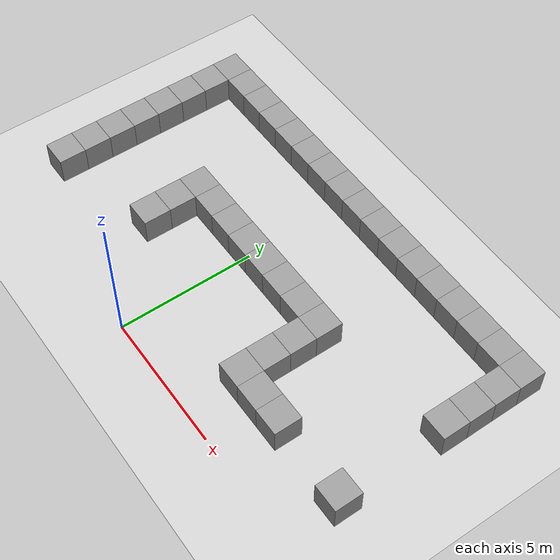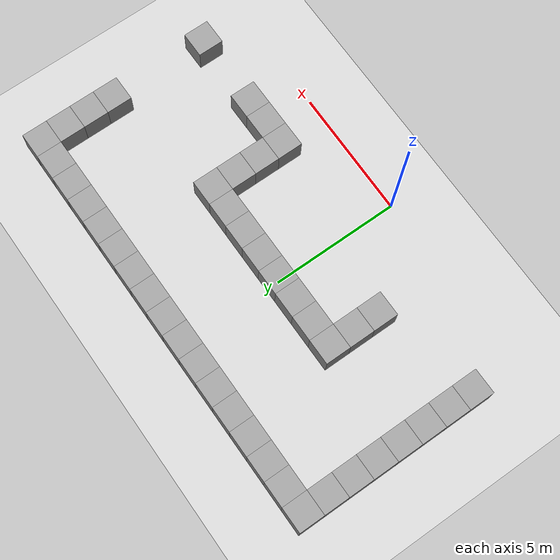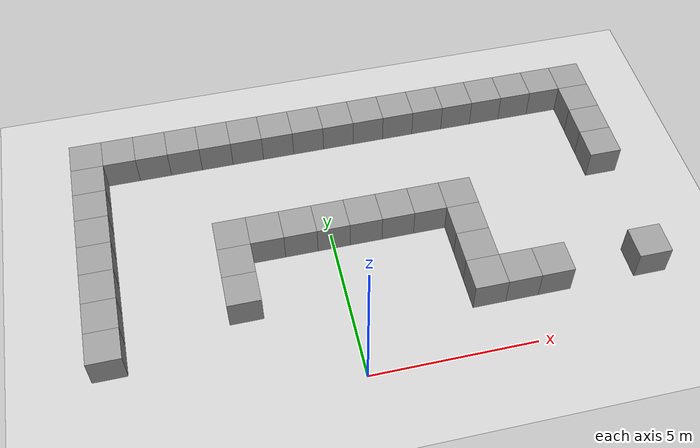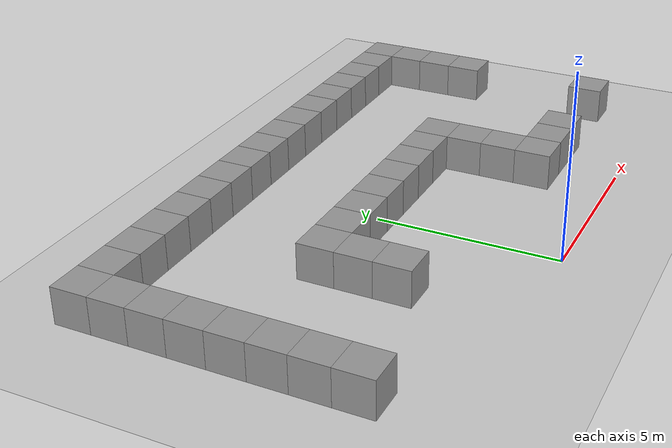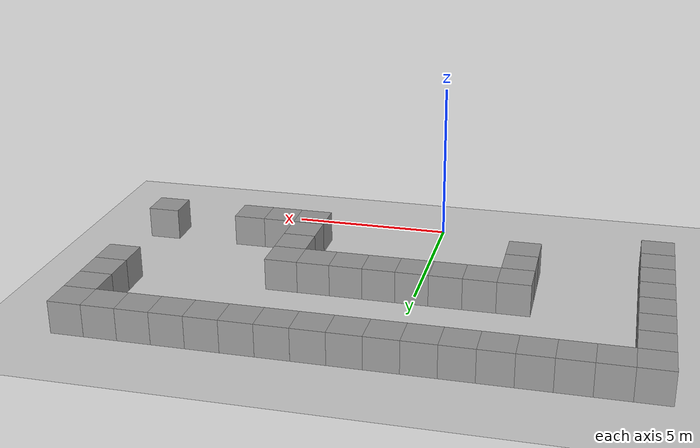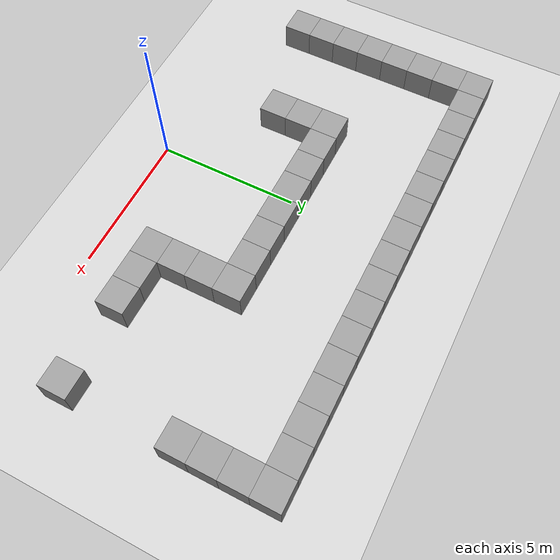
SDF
<sdf version="1.4">
 <world name="default">
  <model name="ground_plane">
   <static>1</static>
   <link name="link">
    <collision name="collision">
     <geometry><plane><normal>0 0 1</normal><size>100 100</size></plane></geometry>
     <surface><friction><ode><mu>100</mu><mu2>50</mu2></ode></friction></surface>
    </collision>
    <visual name="visual">
     <cast_shadows>0</cast_shadows>
     <geometry><plane><normal>0 0 1</normal><size>100 100</size></plane></geometry>
     <material>
      <script><uri>file://media/materials/scripts/gazebo.material</uri><name>Gazebo/Grey</name></script>
     </material>
    </visual>
    <velocity_decay><linear>0</linear><angular>0</angular></velocity_decay>
   </link>
  </model>
  <model name="unit_box_26">
   <pose>9 2.00001 0.5 -0 -0 -3e-06</pose>
   <link name="link">
    <inertial>
     <mass>1</mass>
     <inertia><ixx>1</ixx><ixy>0</ixy><ixz>0</ixz><iyy>1</iyy><iyz>0</iyz><izz>1</izz></inertia>
    </inertial>
    <collision name="collision"><geometry><box><size>1 1 1</size></box></geometry></collision>
    <visual name="visual">
     <geometry><box><size>1 1 1</size></box></geometry>
     <material>
      <script><uri>file://media/materials/scripts/gazebo.material</uri><name>Gazebo/Grey</name></script>
     </material>
    </visual>
    <velocity_decay><linear>0</linear><angular>0</angular></velocity_decay>
   </link>
   <static>0</static>
  </model>
  <model name="unit_box_30">
   <pose>9.00002 6.00002 0.5 0 0 -2e-06</pose>
   <link name="link">
    <inertial>
     <mass>1</mass>
     <inertia><ixx>1</ixx><ixy>0</ixy><ixz>0</ixz><iyy>1</iyy><iyz>0</iyz><izz>1</izz></inertia>
    </inertial>
    <collision name="collision"><geometry><box><size>1 1 1</size></box></geometry></collision>
    <visual name="visual">
     <geometry><box><size>1 1 1</size></box></geometry>
     <material>
      <script><uri>file://media/materials/scripts/gazebo.material</uri><name>Gazebo/Grey</name></script>
     </material>
    </visual>
    <velocity_decay><linear>0</linear><angular>0</angular></velocity_decay>
   </link>
   <static>0</static>
  </model>
  <model name="unit_box_31">
   <pose>9 7.00002 0.5 0 0 -2e-06</pose>
   <link name="link">
    <inertial>
     <mass>1</mass>
     <inertia><ixx>1</ixx><ixy>0</ixy><ixz>0</ixz><iyy>1</iyy><iyz>0</iyz><izz>1</izz></inertia>
    </inertial>
    <collision name="collision"><geometry><box><size>1 1 1</size></box></geometry></collision>
    <visual name="visual">
     <geometry><box><size>1 1 1</size></box></geometry>
     <material>
      <script><uri>file://media/materials/scripts/gazebo.material</uri><name>Gazebo/Grey</name></script>
     </material>
    </visual>
    <velocity_decay><linear>0</linear><angular>0</angular></velocity_decay>
   </link>
   <static>0</static>
  </model>
  <model name="unit_box_32">
   <pose>9.00003 8.00002 0.5 0 0 -1e-06</pose>
   <link name="link">
    <inertial>
     <mass>1</mass>
     <inertia><ixx>1</ixx><ixy>0</ixy><ixz>0</ixz><iyy>1</iyy><iyz>0</iyz><izz>1</izz></inertia>
    </inertial>
    <collision name="collision"><geometry><box><size>1 1 1</size></box></geometry></collision>
    <visual name="visual">
     <geometry><box><size>1 1 1</size></box></geometry>
     <material>
      <script><uri>file://media/materials/scripts/gazebo.material</uri><name>Gazebo/Grey</name></script>
     </material>
    </visual>
    <velocity_decay><linear>0</linear><angular>0</angular></velocity_decay>
   </link>
   <static>0</static>
  </model>
  <model name="unit_box_33">
   <pose>9.00002 9.00002 0.5 0 0 -3e-06</pose>
   <link name="link">
    <inertial>
     <mass>1</mass>
     <inertia><ixx>1</ixx><ixy>0</ixy><ixz>0</ixz><iyy>1</iyy><iyz>0</iyz><izz>1</izz></inertia>
    </inertial>
    <collision name="collision"><geometry><box><size>1 1 1</size></box></geometry></collision>
    <visual name="visual">
     <geometry><box><size>1 1 1</size></box></geometry>
     <material>
      <script><uri>file://media/materials/scripts/gazebo.material</uri><name>Gazebo/Grey</name></script>
     </material>
    </visual>
    <velocity_decay><linear>0</linear><angular>0</angular></velocity_decay>
   </link>
   <static>0</static>
  </model>
  <model name="unit_box_34">
   <pose>8.00002 8.99998 0.5 0 0 -4e-06</pose>
   <link name="link">
    <inertial>
     <mass>1</mass>
     <inertia><ixx>1</ixx><ixy>0</ixy><ixz>0</ixz><iyy>1</iyy><iyz>0</iyz><izz>1</izz></inertia>
    </inertial>
    <collision name="collision"><geometry><box><size>1 1 1</size></box></geometry></collision>
    <visual name="visual">
     <geometry><box><size>1 1 1</size></box></geometry>
     <material>
      <script><uri>file://media/materials/scripts/gazebo.material</uri><name>Gazebo/Grey</name></script>
     </material>
    </visual>
    <velocity_decay><linear>0</linear><angular>0</angular></velocity_decay>
   </link>
   <static>0</static>
  </model>
  <model name="unit_box_35">
   <pose>7.00001 9.00001 0.5 0 0 -1.1e-05</pose>
   <link name="link">
    <inertial>
     <mass>1</mass>
     <inertia><ixx>1</ixx><ixy>0</ixy><ixz>0</ixz><iyy>1</iyy><iyz>0</iyz><izz>1</izz></inertia>
    </inertial>
    <collision name="collision"><geometry><box><size>1 1 1</size></box></geometry></collision>
    <visual name="visual">
     <geometry><box><size>1 1 1</size></box></geometry>
     <material>
      <script><uri>file://media/materials/scripts/gazebo.material</uri><name>Gazebo/Grey</name></script>
     </material>
    </visual>
    <velocity_decay><linear>0</linear><angular>0</angular></velocity_decay>
   </link>
   <static>0</static>
  </model>
  <model name="unit_box_36">
   <pose>6.00001 9.00001 0.5 0 -0 -1e-05</pose>
   <link name="link">
    <inertial>
     <mass>1</mass>
     <inertia><ixx>1</ixx><ixy>0</ixy><ixz>0</ixz><iyy>1</iyy><iyz>0</iyz><izz>1</izz></inertia>
    </inertial>
    <collision name="collision"><geometry><box><size>1 1 1</size></box></geometry></collision>
    <visual name="visual">
     <geometry><box><size>1 1 1</size></box></geometry>
     <material>
      <script><uri>file://media/materials/scripts/gazebo.material</uri><name>Gazebo/Grey</name></script>
     </material>
    </visual>
    <velocity_decay><linear>0</linear><angular>0</angular></velocity_decay>
   </link>
   <static>0</static>
  </model>
  <model name="unit_box_37">
   <pose>5.00001 8.99999 0.5 0 0 -1e-05</pose>
   <link name="link">
    <inertial>
     <mass>1</mass>
     <inertia><ixx>1</ixx><ixy>0</ixy><ixz>0</ixz><iyy>1</iyy><iyz>0</iyz><izz>1</izz></inertia>
    </inertial>
    <collision name="collision"><geometry><box><size>1 1 1</size></box></geometry></collision>
    <visual name="visual">
     <geometry><box><size>1 1 1</size></box></geometry>
     <material>
      <script><uri>file://media/materials/scripts/gazebo.material</uri><name>Gazebo/Grey</name></script>
     </material>
    </visual>
    <velocity_decay><linear>0</linear><angular>0</angular></velocity_decay>
   </link>
   <static>0</static>
  </model>
  <model name="unit_box_38">
   <pose>4.00001 8.99999 0.5 0 0 -9e-06</pose>
   <link name="link">
    <inertial>
     <mass>1</mass>
     <inertia><ixx>1</ixx><ixy>0</ixy><ixz>0</ixz><iyy>1</iyy><iyz>0</iyz><izz>1</izz></inertia>
    </inertial>
    <collision name="collision"><geometry><box><size>1 1 1</size></box></geometry></collision>
    <visual name="visual">
     <geometry><box><size>1 1 1</size></box></geometry>
     <material>
      <script><uri>file://media/materials/scripts/gazebo.material</uri><name>Gazebo/Grey</name></script>
     </material>
    </visual>
    <velocity_decay><linear>0</linear><angular>0</angular></velocity_decay>
   </link>
   <static>0</static>
  </model>
  <model name="unit_box_39">
   <pose>3.00001 8.99998 0.5 -0 -0 -1e-05</pose>
   <link name="link">
    <inertial>
     <mass>1</mass>
     <inertia><ixx>1</ixx><ixy>0</ixy><ixz>0</ixz><iyy>1</iyy><iyz>0</iyz><izz>1</izz></inertia>
    </inertial>
    <collision name="collision"><geometry><box><size>1 1 1</size></box></geometry></collision>
    <visual name="visual">
     <geometry><box><size>1 1 1</size></box></geometry>
     <material>
      <script><uri>file://media/materials/scripts/gazebo.material</uri><name>Gazebo/Grey</name></script>
     </material>
    </visual>
    <velocity_decay><linear>0</linear><angular>0</angular></velocity_decay>
   </link>
   <static>0</static>
  </model>
  <model name="unit_box_40">
   <pose>2.00001 8.99996 0.5 0 0 -1e-05</pose>
   <link name="link">
    <inertial>
     <mass>1</mass>
     <inertia><ixx>1</ixx><ixy>0</ixy><ixz>0</ixz><iyy>1</iyy><iyz>0</iyz><izz>1</izz></inertia>
    </inertial>
    <collision name="collision"><geometry><box><size>1 1 1</size></box></geometry></collision>
    <visual name="visual">
     <geometry><box><size>1 1 1</size></box></geometry>
     <material>
      <script><uri>file://media/materials/scripts/gazebo.material</uri><name>Gazebo/Grey</name></script>
     </material>
    </visual>
    <velocity_decay><linear>0</linear><angular>0</angular></velocity_decay>
   </link>
   <static>0</static>
  </model>
  <model name="unit_box_41">
   <pose>1.00001 8.99996 0.5 0 -0 -9e-06</pose>
   <link name="link">
    <inertial>
     <mass>1</mass>
     <inertia><ixx>1</ixx><ixy>0</ixy><ixz>0</ixz><iyy>1</iyy><iyz>0</iyz><izz>1</izz></inertia>
    </inertial>
    <collision name="collision"><geometry><box><size>1 1 1</size></box></geometry></collision>
    <visual name="visual">
     <geometry><box><size>1 1 1</size></box></geometry>
     <material>
      <script><uri>file://media/materials/scripts/gazebo.material</uri><name>Gazebo/Grey</name></script>
     </material>
    </visual>
    <velocity_decay><linear>0</linear><angular>0</angular></velocity_decay>
   </link>
   <static>0</static>
  </model>
  <model name="unit_box_42">
   <pose>4e-06 8.99999 0.5 -0 -0 -8e-06</pose>
   <link name="link">
    <inertial>
     <mass>1</mass>
     <inertia><ixx>1</ixx><ixy>0</ixy><ixz>0</ixz><iyy>1</iyy><iyz>0</iyz><izz>1</izz></inertia>
    </inertial>
    <collision name="collision"><geometry><box><size>1 1 1</size></box></geometry></collision>
    <visual name="visual">
     <geometry><box><size>1 1 1</size></box></geometry>
     <material>
      <script><uri>file://media/materials/scripts/gazebo.material</uri><name>Gazebo/Grey</name></script>
     </material>
    </visual>
    <velocity_decay><linear>0</linear><angular>0</angular></velocity_decay>
   </link>
   <static>0</static>
  </model>
  <model name="unit_box_43">
   <pose>-0.999997 8.99998 0.5 -0 -0 -7e-06</pose>
   <link name="link">
    <inertial>
     <mass>1</mass>
     <inertia><ixx>1</ixx><ixy>0</ixy><ixz>0</ixz><iyy>1</iyy><iyz>0</iyz><izz>1</izz></inertia>
    </inertial>
    <collision name="collision"><geometry><box><size>1 1 1</size></box></geometry></collision>
    <visual name="visual">
     <geometry><box><size>1 1 1</size></box></geometry>
     <material>
      <script><uri>file://media/materials/scripts/gazebo.material</uri><name>Gazebo/Grey</name></script>
     </material>
    </visual>
    <velocity_decay><linear>0</linear><angular>0</angular></velocity_decay>
   </link>
   <static>0</static>
  </model>
  <model name="unit_box_44">
   <pose>-2 9 0.5 0 0 -8e-06</pose>
   <link name="link">
    <inertial>
     <mass>1</mass>
     <inertia><ixx>1</ixx><ixy>0</ixy><ixz>0</ixz><iyy>1</iyy><iyz>0</iyz><izz>1</izz></inertia>
    </inertial>
    <collision name="collision"><geometry><box><size>1 1 1</size></box></geometry></collision>
    <visual name="visual">
     <geometry><box><size>1 1 1</size></box></geometry>
     <material>
      <script><uri>file://media/materials/scripts/gazebo.material</uri><name>Gazebo/Grey</name></script>
     </material>
    </visual>
    <velocity_decay><linear>0</linear><angular>0</angular></velocity_decay>
   </link>
   <static>0</static>
  </model>
  <model name="unit_box_45">
   <pose>-3 9.00001 0.5 -0 -0 -7e-06</pose>
   <link name="link">
    <inertial>
     <mass>1</mass>
     <inertia><ixx>1</ixx><ixy>0</ixy><ixz>0</ixz><iyy>1</iyy><iyz>0</iyz><izz>1</izz></inertia>
    </inertial>
    <collision name="collision"><geometry><box><size>1 1 1</size></box></geometry></collision>
    <visual name="visual">
     <geometry><box><size>1 1 1</size></box></geometry>
     <material>
      <script><uri>file://media/materials/scripts/gazebo.material</uri><name>Gazebo/Grey</name></script>
     </material>
    </visual>
    <velocity_decay><linear>0</linear><angular>0</angular></velocity_decay>
   </link>
   <static>0</static>
  </model>
  <model name="unit_box_46">
   <pose>-4 9.00001 0.5 0 -0 -8e-06</pose>
   <link name="link">
    <inertial>
     <mass>1</mass>
     <inertia><ixx>1</ixx><ixy>0</ixy><ixz>0</ixz><iyy>1</iyy><iyz>0</iyz><izz>1</izz></inertia>
    </inertial>
    <collision name="collision"><geometry><box><size>1 1 1</size></box></geometry></collision>
    <visual name="visual">
     <geometry><box><size>1 1 1</size></box></geometry>
     <material>
      <script><uri>file://media/materials/scripts/gazebo.material</uri><name>Gazebo/Grey</name></script>
     </material>
    </visual>
    <velocity_decay><linear>0</linear><angular>0</angular></velocity_decay>
   </link>
   <static>0</static>
  </model>
  <model name="unit_box_47">
   <pose>-5 9 0.5 0 0 -1e-05</pose>
   <link name="link">
    <inertial>
     <mass>1</mass>
     <inertia><ixx>1</ixx><ixy>0</ixy><ixz>0</ixz><iyy>1</iyy><iyz>0</iyz><izz>1</izz></inertia>
    </inertial>
    <collision name="collision"><geometry><box><size>1 1 1</size></box></geometry></collision>
    <visual name="visual">
     <geometry><box><size>1 1 1</size></box></geometry>
     <material>
      <script><uri>file://media/materials/scripts/gazebo.material</uri><name>Gazebo/Grey</name></script>
     </material>
    </visual>
    <velocity_decay><linear>0</linear><angular>0</angular></velocity_decay>
   </link>
   <static>0</static>
  </model>
  <model name="unit_box_48">
   <pose>-6 9 0.5 0 0 -1.4e-05</pose>
   <link name="link">
    <inertial>
     <mass>1</mass>
     <inertia><ixx>1</ixx><ixy>0</ixy><ixz>0</ixz><iyy>1</iyy><iyz>0</iyz><izz>1</izz></inertia>
    </inertial>
    <collision name="collision"><geometry><box><size>1 1 1</size></box></geometry></collision>
    <visual name="visual">
     <geometry><box><size>1 1 1</size></box></geometry>
     <material>
      <script><uri>file://media/materials/scripts/gazebo.material</uri><name>Gazebo/Grey</name></script>
     </material>
    </visual>
    <velocity_decay><linear>0</linear><angular>0</angular></velocity_decay>
   </link>
   <static>0</static>
  </model>
  <model name="unit_box_49">
   <pose>-7.00001 9.00001 0.5 0 -0 -1.2e-05</pose>
   <link name="link">
    <inertial>
     <mass>1</mass>
     <inertia><ixx>1</ixx><ixy>0</ixy><ixz>0</ixz><iyy>1</iyy><iyz>0</iyz><izz>1</izz></inertia>
    </inertial>
    <collision name="collision"><geometry><box><size>1 1 1</size></box></geometry></collision>
    <visual name="visual">
     <geometry><box><size>1 1 1</size></box></geometry>
     <material>
      <script><uri>file://media/materials/scripts/gazebo.material</uri><name>Gazebo/Grey</name></script>
     </material>
    </visual>
    <velocity_decay><linear>0</linear><angular>0</angular></velocity_decay>
   </link>
   <static>0</static>
  </model>
  <model name="unit_box_50">
   <pose>-6.99996 8.00001 0.5 0 0 -1.2e-05</pose>
   <link name="link">
    <inertial>
     <mass>1</mass>
     <inertia><ixx>1</ixx><ixy>0</ixy><ixz>0</ixz><iyy>1</iyy><iyz>0</iyz><izz>1</izz></inertia>
    </inertial>
    <collision name="collision"><geometry><box><size>1 1 1</size></box></geometry></collision>
    <visual name="visual">
     <geometry><box><size>1 1 1</size></box></geometry>
     <material>
      <script><uri>file://media/materials/scripts/gazebo.material</uri><name>Gazebo/Grey</name></script>
     </material>
    </visual>
    <velocity_decay><linear>0</linear><angular>0</angular></velocity_decay>
   </link>
   <static>0</static>
  </model>
  <model name="unit_box_51">
   <pose>-6.99996 7.00001 0.5 0 0 -1.2e-05</pose>
   <link name="link">
    <inertial>
     <mass>1</mass>
     <inertia><ixx>1</ixx><ixy>0</ixy><ixz>0</ixz><iyy>1</iyy><iyz>0</iyz><izz>1</izz></inertia>
    </inertial>
    <collision name="collision"><geometry><box><size>1 1 1</size></box></geometry></collision>
    <visual name="visual">
     <geometry><box><size>1 1 1</size></box></geometry>
     <material>
      <script><uri>file://media/materials/scripts/gazebo.material</uri><name>Gazebo/Grey</name></script>
     </material>
    </visual>
    <velocity_decay><linear>0</linear><angular>0</angular></velocity_decay>
   </link>
   <static>0</static>
  </model>
  <model name="unit_box_52">
   <pose>-6.99996 6.00001 0.5 -0 -0 -1.2e-05</pose>
   <link name="link">
    <inertial>
     <mass>1</mass>
     <inertia><ixx>1</ixx><ixy>0</ixy><ixz>0</ixz><iyy>1</iyy><iyz>0</iyz><izz>1</izz></inertia>
    </inertial>
    <collision name="collision"><geometry><box><size>1 1 1</size></box></geometry></collision>
    <visual name="visual">
     <geometry><box><size>1 1 1</size></box></geometry>
     <material>
      <script><uri>file://media/materials/scripts/gazebo.material</uri><name>Gazebo/Grey</name></script>
     </material>
    </visual>
    <velocity_decay><linear>0</linear><angular>0</angular></velocity_decay>
   </link>
   <static>0</static>
  </model>
  <model name="unit_box_53">
   <pose>-6.99996 5 0.5 0 0 -9e-06</pose>
   <link name="link">
    <inertial>
     <mass>1</mass>
     <inertia><ixx>1</ixx><ixy>0</ixy><ixz>0</ixz><iyy>1</iyy><iyz>0</iyz><izz>1</izz></inertia>
    </inertial>
    <collision name="collision"><geometry><box><size>1 1 1</size></box></geometry></collision>
    <visual name="visual">
     <geometry><box><size>1 1 1</size></box></geometry>
     <material>
      <script><uri>file://media/materials/scripts/gazebo.material</uri><name>Gazebo/Grey</name></script>
     </material>
    </visual>
    <velocity_decay><linear>0</linear><angular>0</angular></velocity_decay>
   </link>
   <static>0</static>
  </model>
  <model name="unit_box_54">
   <pose>-6.99997 4 0.5 0 -0 -9e-06</pose>
   <link name="link">
    <inertial>
     <mass>1</mass>
     <inertia><ixx>1</ixx><ixy>0</ixy><ixz>0</ixz><iyy>1</iyy><iyz>0</iyz><izz>1</izz></inertia>
    </inertial>
    <collision name="collision"><geometry><box><size>1 1 1</size></box></geometry></collision>
    <visual name="visual">
     <geometry><box><size>1 1 1</size></box></geometry>
     <material>
      <script><uri>file://media/materials/scripts/gazebo.material</uri><name>Gazebo/Grey</name></script>
     </material>
    </visual>
    <velocity_decay><linear>0</linear><angular>0</angular></velocity_decay>
   </link>
   <static>0</static>
  </model>
  <model name="unit_box_55">
   <pose>-6.99999 3 0.5 0 0 -9e-06</pose>
   <link name="link">
    <inertial>
     <mass>1</mass>
     <inertia><ixx>1</ixx><ixy>0</ixy><ixz>0</ixz><iyy>1</iyy><iyz>0</iyz><izz>1</izz></inertia>
    </inertial>
    <collision name="collision"><geometry><box><size>1 1 1</size></box></geometry></collision>
    <visual name="visual">
     <geometry><box><size>1 1 1</size></box></geometry>
     <material>
      <script><uri>file://media/materials/scripts/gazebo.material</uri><name>Gazebo/Grey</name></script>
     </material>
    </visual>
    <velocity_decay><linear>0</linear><angular>0</angular></velocity_decay>
   </link>
   <static>0</static>
  </model>
  <model name="unit_box_56">
   <pose>-6.99998 2 0.5 0 0 -9e-06</pose>
   <link name="link">
    <inertial>
     <mass>1</mass>
     <inertia><ixx>1</ixx><ixy>0</ixy><ixz>0</ixz><iyy>1</iyy><iyz>0</iyz><izz>1</izz></inertia>
    </inertial>
    <collision name="collision"><geometry><box><size>1 1 1</size></box></geometry></collision>
    <visual name="visual">
     <geometry><box><size>1 1 1</size></box></geometry>
     <material>
      <script><uri>file://media/materials/scripts/gazebo.material</uri><name>Gazebo/Grey</name></script>
     </material>
    </visual>
    <velocity_decay><linear>0</linear><angular>0</angular></velocity_decay>
   </link>
   <static>0</static>
  </model>
  <model name="unit_box_77">
   <pose>6 1.99999 0.5 0 -0 0</pose>
   <link name="link">
    <inertial>
     <mass>1</mass>
     <inertia><ixx>1</ixx><ixy>0</ixy><ixz>0</ixz><iyy>1</iyy><iyz>0</iyz><izz>1</izz></inertia>
    </inertial>
    <collision name="collision"><geometry><box><size>1 1 1</size></box></geometry></collision>
    <visual name="visual">
     <geometry><box><size>1 1 1</size></box></geometry>
     <material>
      <script><uri>file://media/materials/scripts/gazebo.material</uri><name>Gazebo/Grey</name></script>
     </material>
    </visual>
    <velocity_decay><linear>0</linear><angular>0</angular></velocity_decay>
   </link>
   <static>0</static>
  </model>
  <model name="unit_box_78">
   <pose>5 2 0.5 0 -0 1e-06</pose>
   <link name="link">
    <inertial>
     <mass>1</mass>
     <inertia><ixx>1</ixx><ixy>0</ixy><ixz>0</ixz><iyy>1</iyy><iyz>0</iyz><izz>1</izz></inertia>
    </inertial>
    <collision name="collision"><geometry><box><size>1 1 1</size></box></geometry></collision>
    <visual name="visual">
     <geometry><box><size>1 1 1</size></box></geometry>
     <material>
      <script><uri>file://media/materials/scripts/gazebo.material</uri><name>Gazebo/Grey</name></script>
     </material>
    </visual>
    <velocity_decay><linear>0</linear><angular>0</angular></velocity_decay>
   </link>
   <static>0</static>
  </model>
  <model name="unit_box_79">
   <pose>4 2 0.5 0 -0 1e-06</pose>
   <link name="link">
    <inertial>
     <mass>1</mass>
     <inertia><ixx>1</ixx><ixy>0</ixy><ixz>0</ixz><iyy>1</iyy><iyz>0</iyz><izz>1</izz></inertia>
    </inertial>
    <collision name="collision"><geometry><box><size>1 1 1</size></box></geometry></collision>
    <visual name="visual">
     <geometry><box><size>1 1 1</size></box></geometry>
     <material>
      <script><uri>file://media/materials/scripts/gazebo.material</uri><name>Gazebo/Grey</name></script>
     </material>
    </visual>
    <velocity_decay><linear>0</linear><angular>0</angular></velocity_decay>
   </link>
   <static>0</static>
  </model>
  <model name="unit_box_80">
   <pose>4 3 0.5 -0 -0 -1e-06</pose>
   <link name="link">
    <inertial>
     <mass>1</mass>
     <inertia><ixx>1</ixx><ixy>0</ixy><ixz>0</ixz><iyy>1</iyy><iyz>0</iyz><izz>1</izz></inertia>
    </inertial>
    <collision name="collision"><geometry><box><size>1 1 1</size></box></geometry></collision>
    <visual name="visual">
     <geometry><box><size>1 1 1</size></box></geometry>
     <material>
      <script><uri>file://media/materials/scripts/gazebo.material</uri><name>Gazebo/Grey</name></script>
     </material>
    </visual>
    <velocity_decay><linear>0</linear><angular>0</angular></velocity_decay>
   </link>
   <static>0</static>
  </model>
  <model name="unit_box_81">
   <pose>4 4 0.5 -0 -0 -1e-06</pose>
   <link name="link">
    <inertial>
     <mass>1</mass>
     <inertia><ixx>1</ixx><ixy>0</ixy><ixz>0</ixz><iyy>1</iyy><iyz>0</iyz><izz>1</izz></inertia>
    </inertial>
    <collision name="collision"><geometry><box><size>1 1 1</size></box></geometry></collision>
    <visual name="visual">
     <geometry><box><size>1 1 1</size></box></geometry>
     <material>
      <script><uri>file://media/materials/scripts/gazebo.material</uri><name>Gazebo/Grey</name></script>
     </material>
    </visual>
    <velocity_decay><linear>0</linear><angular>0</angular></velocity_decay>
   </link>
   <static>0</static>
  </model>
  <model name="unit_box_82">
   <pose>4.00001 5 0.5 0 0 -1e-06</pose>
   <link name="link">
    <inertial>
     <mass>1</mass>
     <inertia><ixx>1</ixx><ixy>0</ixy><ixz>0</ixz><iyy>1</iyy><iyz>0</iyz><izz>1</izz></inertia>
    </inertial>
    <collision name="collision"><geometry><box><size>1 1 1</size></box></geometry></collision>
    <visual name="visual">
     <geometry><box><size>1 1 1</size></box></geometry>
     <material>
      <script><uri>file://media/materials/scripts/gazebo.material</uri><name>Gazebo/Grey</name></script>
     </material>
    </visual>
    <velocity_decay><linear>0</linear><angular>0</angular></velocity_decay>
   </link>
   <static>0</static>
  </model>
  <model name="unit_box_83">
   <pose>3.00001 5.00001 0.5 0 0 -2e-06</pose>
   <link name="link">
    <inertial>
     <mass>1</mass>
     <inertia><ixx>1</ixx><ixy>0</ixy><ixz>0</ixz><iyy>1</iyy><iyz>0</iyz><izz>1</izz></inertia>
    </inertial>
    <collision name="collision"><geometry><box><size>1 1 1</size></box></geometry></collision>
    <visual name="visual">
     <geometry><box><size>1 1 1</size></box></geometry>
     <material>
      <script><uri>file://media/materials/scripts/gazebo.material</uri><name>Gazebo/Grey</name></script>
     </material>
    </visual>
    <velocity_decay><linear>0</linear><angular>0</angular></velocity_decay>
   </link>
   <static>0</static>
  </model>
  <model name="unit_box_84">
   <pose>2.00001 5 0.5 0 0 -2e-06</pose>
   <link name="link">
    <inertial>
     <mass>1</mass>
     <inertia><ixx>1</ixx><ixy>0</ixy><ixz>0</ixz><iyy>1</iyy><iyz>0</iyz><izz>1</izz></inertia>
    </inertial>
    <collision name="collision"><geometry><box><size>1 1 1</size></box></geometry></collision>
    <visual name="visual">
     <geometry><box><size>1 1 1</size></box></geometry>
     <material>
      <script><uri>file://media/materials/scripts/gazebo.material</uri><name>Gazebo/Grey</name></script>
     </material>
    </visual>
    <velocity_decay><linear>0</linear><angular>0</angular></velocity_decay>
   </link>
   <static>0</static>
  </model>
  <model name="unit_box_85">
   <pose>1.00001 5 0.5 0 0 -2e-06</pose>
   <link name="link">
    <inertial>
     <mass>1</mass>
     <inertia><ixx>1</ixx><ixy>0</ixy><ixz>0</ixz><iyy>1</iyy><iyz>0</iyz><izz>1</izz></inertia>
    </inertial>
    <collision name="collision"><geometry><box><size>1 1 1</size></box></geometry></collision>
    <visual name="visual">
     <geometry><box><size>1 1 1</size></box></geometry>
     <material>
      <script><uri>file://media/materials/scripts/gazebo.material</uri><name>Gazebo/Grey</name></script>
     </material>
    </visual>
    <velocity_decay><linear>0</linear><angular>0</angular></velocity_decay>
   </link>
   <static>0</static>
  </model>
  <model name="unit_box_86">
   <pose>6e-06 5 0.5 0 -0 1e-06</pose>
   <link name="link">
    <inertial>
     <mass>1</mass>
     <inertia><ixx>1</ixx><ixy>0</ixy><ixz>0</ixz><iyy>1</iyy><iyz>0</iyz><izz>1</izz></inertia>
    </inertial>
    <collision name="collision"><geometry><box><size>1 1 1</size></box></geometry></collision>
    <visual name="visual">
     <geometry><box><size>1 1 1</size></box></geometry>
     <material>
      <script><uri>file://media/materials/scripts/gazebo.material</uri><name>Gazebo/Grey</name></script>
     </material>
    </visual>
    <velocity_decay><linear>0</linear><angular>0</angular></velocity_decay>
   </link>
   <static>0</static>
  </model>
  <model name="unit_box_87">
   <pose>-0.999995 5.00001 0.5 0 -0 1e-06</pose>
   <link name="link">
    <inertial>
     <mass>1</mass>
     <inertia><ixx>1</ixx><ixy>0</ixy><ixz>0</ixz><iyy>1</iyy><iyz>0</iyz><izz>1</izz></inertia>
    </inertial>
    <collision name="collision"><geometry><box><size>1 1 1</size></box></geometry></collision>
    <visual name="visual">
     <geometry><box><size>1 1 1</size></box></geometry>
     <material>
      <script><uri>file://media/materials/scripts/gazebo.material</uri><name>Gazebo/Grey</name></script>
     </material>
    </visual>
    <velocity_decay><linear>0</linear><angular>0</angular></velocity_decay>
   </link>
   <static>0</static>
  </model>
  <model name="unit_box_88">
   <pose>-2 5 0.5 0 -0 4e-06</pose>
   <link name="link">
    <inertial>
     <mass>1</mass>
     <inertia><ixx>1</ixx><ixy>0</ixy><ixz>0</ixz><iyy>1</iyy><iyz>0</iyz><izz>1</izz></inertia>
    </inertial>
    <collision name="collision"><geometry><box><size>1 1 1</size></box></geometry></collision>
    <visual name="visual">
     <geometry><box><size>1 1 1</size></box></geometry>
     <material>
      <script><uri>file://media/materials/scripts/gazebo.material</uri><name>Gazebo/Grey</name></script>
     </material>
    </visual>
    <velocity_decay><linear>0</linear><angular>0</angular></velocity_decay>
   </link>
   <static>0</static>
  </model>
  <model name="unit_box_89">
   <pose>-3 5 0.5 -0 -0 -1e-06</pose>
   <link name="link">
    <inertial>
     <mass>1</mass>
     <inertia><ixx>1</ixx><ixy>0</ixy><ixz>0</ixz><iyy>1</iyy><iyz>0</iyz><izz>1</izz></inertia>
    </inertial>
    <collision name="collision"><geometry><box><size>1 1 1</size></box></geometry></collision>
    <visual name="visual">
     <geometry><box><size>1 1 1</size></box></geometry>
     <material>
      <script><uri>file://media/materials/scripts/gazebo.material</uri><name>Gazebo/Grey</name></script>
     </material>
    </visual>
    <velocity_decay><linear>0</linear><angular>0</angular></velocity_decay>
   </link>
   <static>0</static>
  </model>
  <model name="unit_box_92">
   <pose>-3 4 0.5 0 -0 0</pose>
   <link name="link">
    <inertial>
     <mass>1</mass>
     <inertia><ixx>1</ixx><ixy>0</ixy><ixz>0</ixz><iyy>1</iyy><iyz>0</iyz><izz>1</izz></inertia>
    </inertial>
    <collision name="collision"><geometry><box><size>1 1 1</size></box></geometry></collision>
    <visual name="visual">
     <geometry><box><size>1 1 1</size></box></geometry>
     <material>
      <script><uri>file://media/materials/scripts/gazebo.material</uri><name>Gazebo/Grey</name></script>
     </material>
    </visual>
    <velocity_decay><linear>0</linear><angular>0</angular></velocity_decay>
   </link>
   <static>0</static>
  </model>
  <model name="unit_box_93">
   <pose>-3 3 0.5 0 -0 0</pose>
   <link name="link">
    <inertial>
     <mass>1</mass>
     <inertia><ixx>1</ixx><ixy>0</ixy><ixz>0</ixz><iyy>1</iyy><iyz>0</iyz><izz>1</izz></inertia>
    </inertial>
    <collision name="collision"><geometry><box><size>1 1 1</size></box></geometry></collision>
    <visual name="visual">
     <geometry><box><size>1 1 1</size></box></geometry>
     <material>
      <script><uri>file://media/materials/scripts/gazebo.material</uri><name>Gazebo/Grey</name></script>
     </material>
    </visual>
    <velocity_decay><linear>0</linear><angular>0</angular></velocity_decay>
   </link>
   <static>0</static>
  </model>
 </world>
</sdf>
